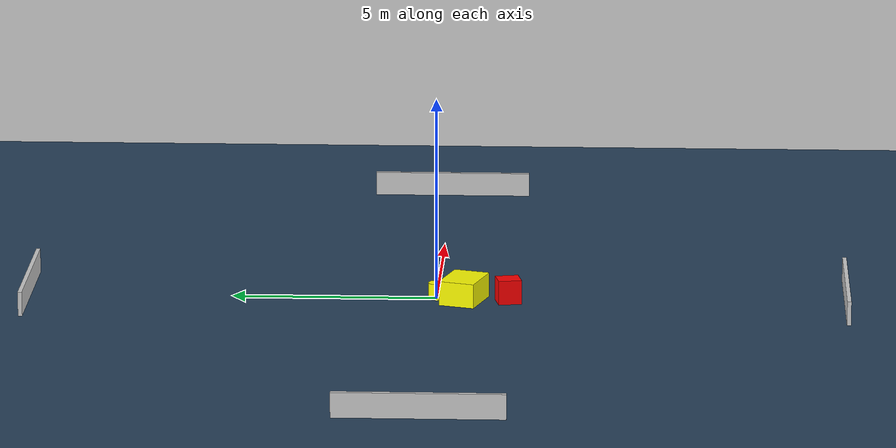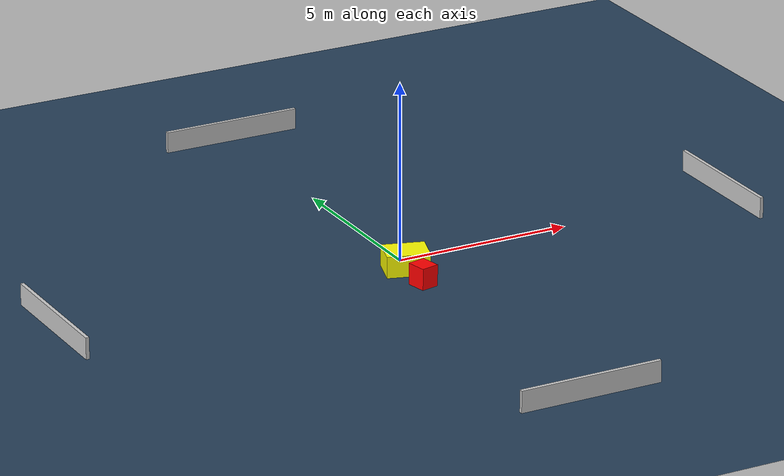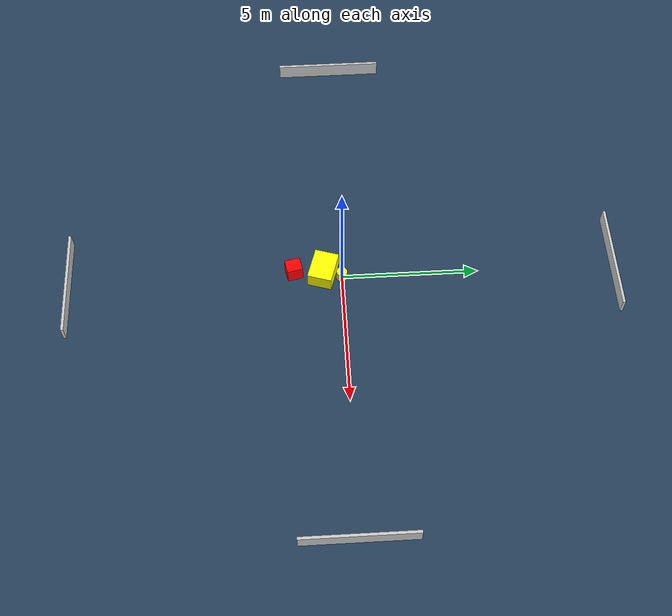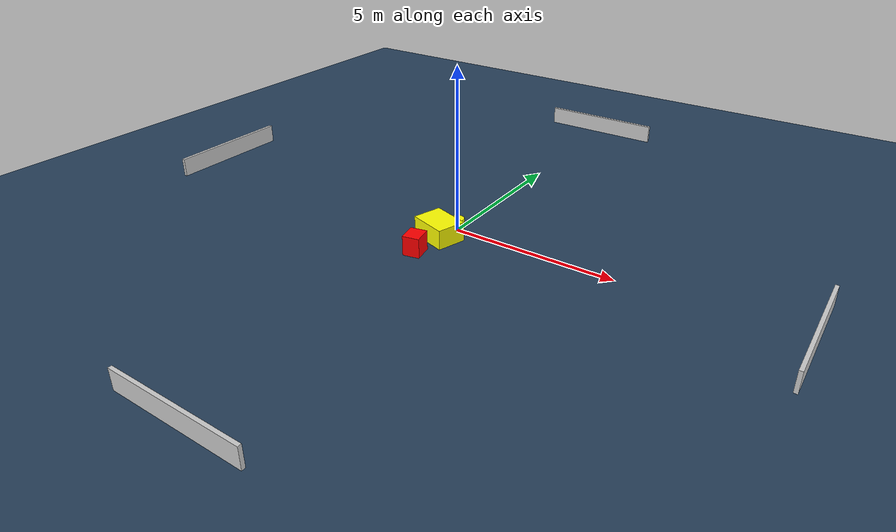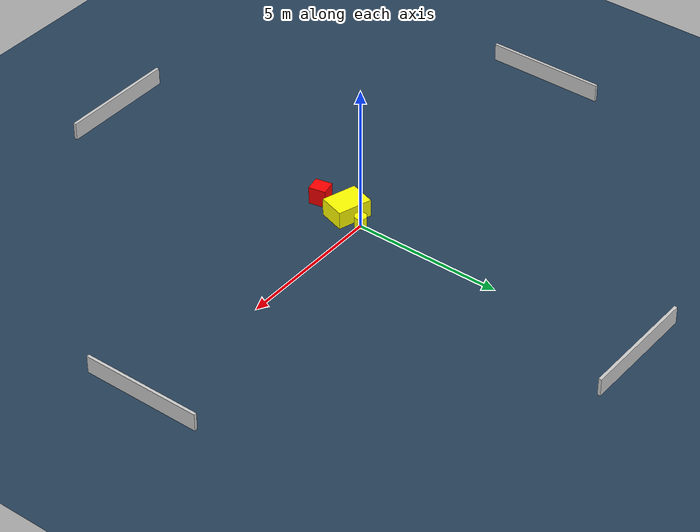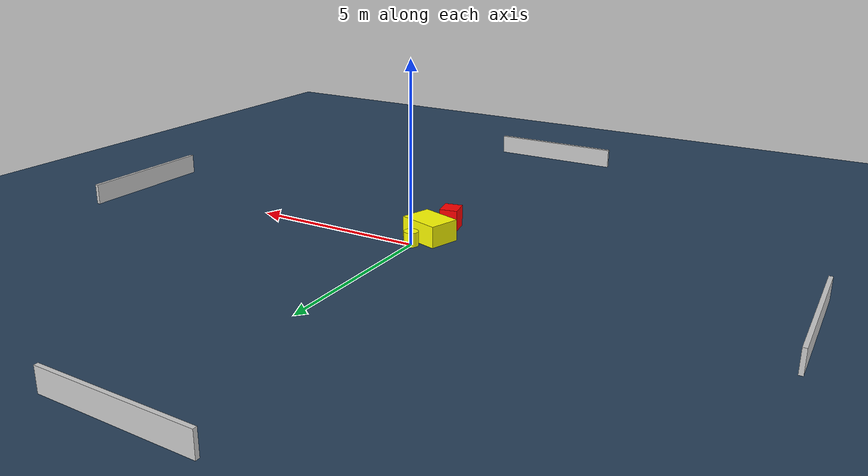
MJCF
<?xml version="1.0" ?>
<mujoco model="generated_environment">
  <option timestep="0.01" integrator="RK4" cone="elliptic"/>
  <default>
    <geom density="1"/>
  </default>
  <asset>
    <texture builtin="gradient" height="3072" name="skybox" rgb1="0.3 0.5 0.7" rgb2="0 0 0" type="skybox" width="512"/>
    <texture builtin="checker" height="300" name="groundplane" rgb1="0.2 0.3 0.4" rgb2="0.1 0.2 0.3" type="2d" width="300"/>
    <material name="groundplane" reflectance="0.2" texrepeat="5 5" texture="groundplane"/>
  </asset>
  <worldbody>
    <light dir="0 0 -1" directional="true" pos="0 0 1.5"/>
    <geom condim="3" friction="0.5 0.005 0.001" material="groundplane" name="floor" pos="0 0 0" size="0 0 0.05" type="plane"/>
    <body name="walls">
      <geom name="wall_1" condim="4" pos="-10.0 0.0 0.3" rgba="0.800000011920929 0.800000011920929 0.800000011920929 1.0" size="0.05 2.0 0.3" type="box"/>
      <geom name="wall_2" condim="4" pos="10.0 0.0 0.3" rgba="0.800000011920929 0.800000011920929 0.800000011920929 1.0" size="0.05 2.0 0.3" type="box"/>
      <geom name="wall_3" condim="4" pos="0.0 -10.0 0.3" rgba="0.800000011920929 0.800000011920929 0.800000011920929 1.0" size="2.0 0.05 0.3" type="box"/>
      <geom name="wall_4" condim="4" pos="0.0 10.0 0.3" rgba="0.800000011920929 0.800000011920929 0.800000011920929 1.0" size="2.0 0.05 0.3" type="box"/>
    </body>
    <body name="robot">
      <joint name="joint_x" type="slide" pos="0 0 0" axis="1 0 0"/>
      <joint name="joint_y" type="slide" pos="0 0 0" axis="0 1 0"/>
      <geom name="robot" type="cylinder" pos="0.0 0.0 0.2" size="0.2 0.2 0.0" mass="5.0" friction="1.0 0.005 0.0001" condim="4" rgba="1.0 1.0 0.0 1.0"/>
    </body>
    <body name="obstacle_1_movable">
      <geom name="obstacle_1_movable" condim="4" pos="-0.1872518537815223 -0.6753291346169563 0.3" euler="0 0 342.6932703379866" friction="0.0 0.005 0.001" rgba="1.0 1.0 0.0 1.0" size="0.5887448183356281 0.44687622561569873 0.3" type="box" mass="0.1"/>
      <joint type="free"/>
    </body>
    <body name="obstacle_2_static">
      <geom name="obstacle_2_static" condim="4" pos="-0.2507794174940027 -1.7586452323565895 0.3" euler="0 0 191.97557086850958" friction="0.0 0.005 0.001" rgba="1.0 0.0 0.0 1.0" size="0.2528365927505088 0.2837367424116 0.3" type="box"/>
    </body>
  </worldbody>
  <actuator>
    <motor name="actuator_x" joint="joint_x" gear="1" ctrlrange="-1 1"/>
    <motor name="actuator_y" joint="joint_y" gear="1" ctrlrange="-1 1"/>
  </actuator>
</mujoco>
